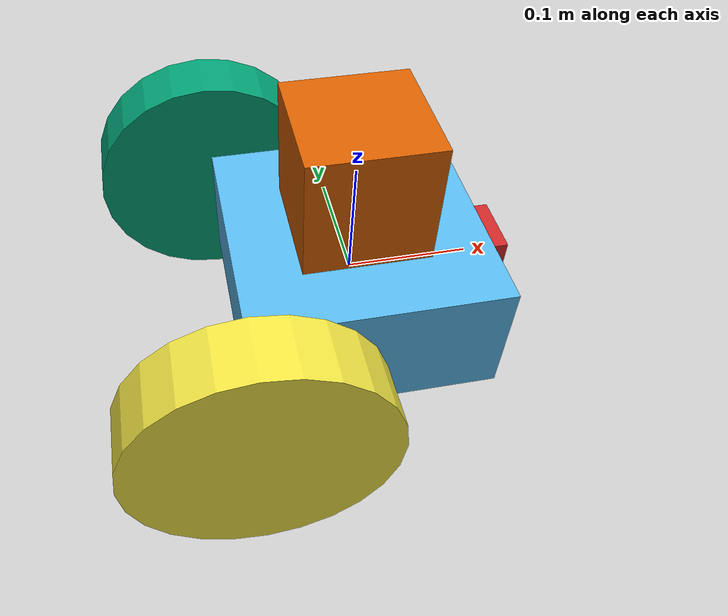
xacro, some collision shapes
<?xml version='1.0'?>

<robot name="robot_localization_ros" xmlns:xacro="http://www.ros.org/wiki/xacro">

  <xacro:include filename="$(find robot_localization_ros)/urdf/robot_localization_ros.gazebo" />

  <link name="robot_footprint"></link>

  <joint name="robot_footprint_joint" type="fixed">
    <origin xyz="0 0 0" rpy="0 0 0" />
    <parent link="robot_footprint"/>
    <child link="chassis" />
  </joint>

  <link name='chassis'>
    <pose>0 0 0.1 0 0 0</pose>

    <inertial>
      <mass value="10.0"/>
      <origin xyz="0.0 0 0" rpy=" 0 0 0"/>
      <inertia
          ixx="0.1" ixy="0" ixz="0"
          iyy="0.1" iyz="0"
          izz="0.1"
      />
    </inertial>

    <collision name='collision'>
      <origin xyz="0 0 0" rpy=" 0 0 0"/>
      <geometry>
        <box size=".2 .2 .1"/>
      </geometry>
    </collision>

    <visual name='chassis_visual'>
      <origin xyz="0 0 0" rpy=" 0 0 0"/>
      <geometry>
        <box size=".2 .2 .1"/>
      </geometry>
    </visual>

    <collision name='front_caster_collision'>
      <origin xyz="0.075 0 -0.05" rpy=" 0 0 0"/>
      <geometry>
        <sphere radius="0.05"/>
      </geometry>
      <surface>
        <friction>
          <ode>
            <mu>0</mu>
            <mu2>0</mu2>
            <slip1>1.0</slip1>
            <slip2>1.0</slip2>
          </ode>
        </friction>
      </surface>
    </collision>

    <visual name='front_caster_visual'>
      <origin xyz="0.075 0 -0.05" rpy=" 0 0 0"/>
      <geometry>
        <sphere radius="0.05"/>
      </geometry>
    </visual>

  </link>

  <!-- left Wheel link -->

  <link name="left_wheel">
    <inertial>
      <mass value="5.0"/>
      <origin xyz="0 0 0" rpy=" 0 1.5707 1.5707"/>
      <inertia
          ixx="0.1" ixy="0" ixz="0"
          iyy="0.1" iyz="0"
          izz="0.1"
      />
    </inertial>

    <collision name="collision">
      <origin xyz="0 0 0" rpy=" 0 1.5707 1.5707"/>
      <geometry>
        <cylinder radius="0.1" length="0.05" />
      </geometry>
    </collision>

    <visual name="visual">
      <origin xyz="0 0 0" rpy="0 1.5707 1.5707"/>
      <geometry>
        <cylinder radius="0.1" length="0.05" />

      </geometry>
    </visual>
  </link>

  <!-- left wheel joint -->

  <joint type="continuous" name="left_wheel_hinge">
    <origin xyz="-0.1 0.15 0" rpy="0 0 0"/>
    <child link="left_wheel"/>
    <parent link="chassis"/>
    <axis xyz="0 1 0" rpy="0 0 0"/>
    <limit effort="10000" velocity="1000"/>
    <joint_properties damping="1.0" friction="1.0"/>
  </joint>
  <!-- right Wheel link -->

  <link name="right_wheel">
    <inertial>
      <mass value="5.0"/>
      <origin xyz="0 0 0" rpy="0 1.5707 1.5707"/>
      <inertia
          ixx="0.1" ixy="0" ixz="0"
          iyy="0.1" iyz="0"
          izz="0.1"
      />
    </inertial>

    <collision name="collision">
      <origin xyz="0 0 0" rpy="0 1.5707 1.5707"/>
      <geometry>
        <cylinder radius="0.1" length="0.05" />
      </geometry>
    </collision>

    <visual name="visual">
      <origin xyz="0 0 0" rpy="0 1.5707 1.5707"/>
      <geometry>
        <cylinder radius="0.1" length="0.05" />
      </geometry>
    </visual>
  </link>

  <!-- right wheel joint -->

  <joint type="continuous" name="right_wheel_hinge">
    <origin xyz="-0.1 -0.15 0" rpy="0 0 0"/>
    <child link="right_wheel"/>
    <parent link="chassis"/>
    <axis xyz="0 1 0" rpy="0 0 0"/>
    <limit effort="10000" velocity="1000"/>
    <joint_properties damping="1.0" friction="1.0"/>
  </joint>

<!-- Camera link -->

  <link name="camera">
    <inertial>
      <mass value="0.1"/>
      <origin xyz="0 0 0" rpy="0 0 0"/>
      <inertia
          ixx="1e-6" ixy="0" ixz="0"
          iyy="1e-6" iyz="0"
          izz="1e-6"
      />
    </inertial>

    <collision name="collision">
      <origin xyz="0 0 0" rpy="0 0 0"/>
      <geometry>
        <box size="0.05 0.05 0.05" />
      </geometry>
    </collision>

    <visual name="visual">
      <origin xyz="0 0 0" rpy="0 0 0"/>
      <geometry>
        <box size="0.05 0.05 0.05" />
      </geometry>
    </visual>
  </link>

<!-- Camera Joint -->

  <joint type="fixed" name="camera_joint">
    <origin xyz="0.1 0 0" rpy="0 0 0"/>
    <child link="camera"/>
    <parent link="chassis"/>
  </joint>

 <!-- Laser Range Finder -->

  <link name="hokuyo">
    <inertial>
      <mass value="0.1"/>
      <origin xyz="0 0 0" rpy="0 0 0"/>
      <inertia
          ixx="1e-6" ixy="0" ixz="0"
          iyy="1e-6" iyz="0"
          izz="1e-6"
      />
    </inertial>

    <collision name="collision">
      <origin xyz="0 0 0" rpy="0 0 0"/>
      <geometry>
        <box size="0.1 0.1 0.1" />
      </geometry>
    </collision>

    <visual name="visual">
      <origin xyz="0 0 0" rpy="0 0 0"/>
      <geometry>
        <mesh filename="package://robot_localization_ros/meshes/hokuyo.dae"/>
                <!-- mesh filename="$(find udacity_bot)/meshes/hokuyo.dae"/ -->
      </geometry>
    </visual>
  </link>

<!-- Laser Range Finder Joint -->

  <joint type="fixed" name="hokuyo_joint">
    <origin xyz="0.0 0 0.1" rpy="0 0 0"/>
    <child link="hokuyo"/>
    <parent link="chassis"/>
  </joint>

</robot>
